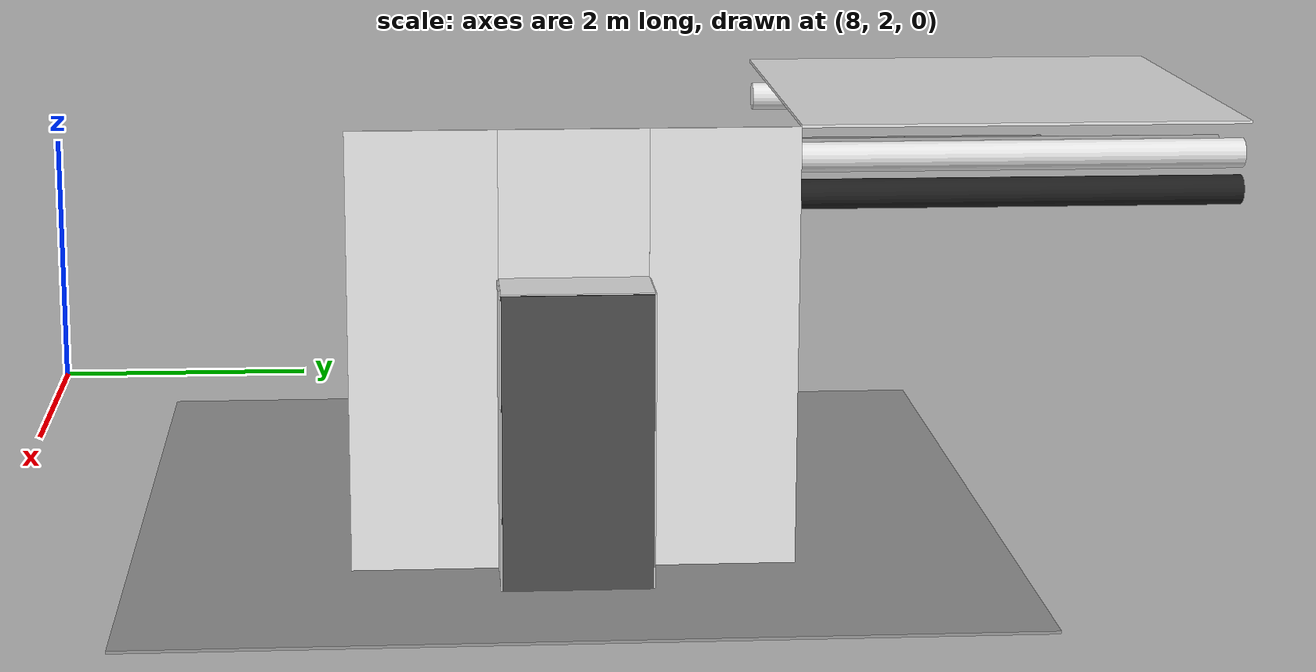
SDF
<sdf version="1.6">
 <world name="default">
  <model name="ceiling_1_4_2_1_3">
   <pose>12.0 7.0 2.55 0.0 0.0 0.0</pose>
   <link name="link_1">
    <visual name="visual">
     <geometry><box><size>0.8 1 0.1</size></box></geometry>
     <material>
      <script><uri>file://media/materials/scripts/gazebo.material</uri><name>Gazebo/Grey</name></script>
     </material>
    </visual>
    <collision name="collision"><geometry><box><size>0.8 1 0.1</size></box></geometry></collision>
   </link>
   <static>1</static>
  </model>
  <model name="grey_pipe_right_1_4_2_0_3">
   <static>1</static>
   <pose>12.0 6.0 2.76 0.0 0.0 0.0</pose>
   <link name="link_0">
    <visual name="visual">
     <pose>0.7 0 0 1.57 0 0</pose>
     <geometry><cylinder><radius>0.02</radius><length>3.0</length></cylinder></geometry>
     <material>
      <script><uri>file://media/materials/scripts/gazebo.material</uri><name>Gazebo/Grey</name></script>
     </material>
    </visual>
    <collision name="collision">
     <pose>0.7 0 0 1.57 0 0</pose>
     <geometry><cylinder><radius>0.02</radius><length>3.0</length></cylinder></geometry>
    </collision>
   </link>
  </model>
  <model name="red_pipe_right_1_4_2_0_3">
   <static>1</static>
   <pose>12.0 6.0 2.76 0.0 0.0 0.0</pose>
   <link name="link_0">
    <visual name="visual">
     <pose>0.85 0 0 1.57 0 0</pose>
     <geometry><cylinder><radius>0.02</radius><length>3.0</length></cylinder></geometry>
     <material>
      <script><uri>file://media/materials/scripts/gazebo.material</uri><name>Gazebo/Red</name></script>
     </material>
    </visual>
    <collision name="collision">
     <pose>0.85 0 0 1.57 0 0</pose>
     <geometry><cylinder><radius>0.02</radius><length>3.0</length></cylinder></geometry>
    </collision>
   </link>
  </model>
  <model name="blue_pipe_right_1_4_2_0_3">
   <static>1</static>
   <pose>12.0 6.0 2.76 0.0 0.0 0.0</pose>
   <link name="link_0">
    <visual name="visual">
     <pose>1 0 0 1.57 0 0</pose>
     <geometry><cylinder><radius>0.02</radius><length>3.0</length></cylinder></geometry>
     <material>
      <script><uri>file://media/materials/scripts/gazebo.material</uri><name>Gazebo/Blue</name></script>
     </material>
    </visual>
    <collision name="collision">
     <pose>1 0 0 1.57 0 0</pose>
     <geometry><cylinder><radius>0.02</radius><length>3.0</length></cylinder></geometry>
    </collision>
   </link>
  </model>
  <model name="wall_bottom_4_2_0_3">
   <static>1</static>
   <pose>12.0 6.0 0.0 0.0 0.0 -1.57</pose>
   <link name="link">
    <collision name="collision"><geometry><box><size>6.0 6.0 0.02</size></box></geometry></collision>
    <visual name="visual">
     <material>
      <script><name>Gazebo/Grey</name><uri>file://media/materials/scripts/gazebo.material</uri></script>
     </material>
     <geometry><box><size>6.0 6.0 0.02</size></box></geometry>
    </visual>
   </link>
  </model>
  <model name="wall_front_front_left_4_2_0_3">
   <static>1</static>
   <pose>13.5 5.0 1.5 0.0 0.0 -1.57</pose>
   <link name="link">
    <collision name="collision"><geometry><box><size>1.0 0.02 3.0</size></box></geometry></collision>
    <visual name="visual">
     <material>
      <script><name>Gazebo/White</name><uri>file://media/materials/scripts/gazebo.material</uri></script>
     </material>
     <geometry><box><size>1.0 0.02 3.0</size></box></geometry>
    </visual>
   </link>
  </model>
  <model name="wall_front_front_right_4_2_0_3">
   <static>1</static>
   <pose>13.5 7.0 1.5 0.0 0.0 -1.57</pose>
   <link name="link">
    <collision name="collision"><geometry><box><size>1.0 0.02 3.0</size></box></geometry></collision>
    <visual name="visual">
     <material>
      <script><name>Gazebo/White</name><uri>file://media/materials/scripts/gazebo.material</uri></script>
     </material>
     <geometry><box><size>1.0 0.02 3.0</size></box></geometry>
    </visual>
   </link>
  </model>
  <model name="wall_front_front_up_4_2_0_3">
   <static>1</static>
   <pose>13.5 6.0 2.5 0.0 0.0 -1.57</pose>
   <link name="link">
    <collision name="collision"><geometry><box><size>1.0 0.02 1.0</size></box></geometry></collision>
    <visual name="visual">
     <material>
      <script><name>Gazebo/White</name><uri>file://media/materials/scripts/gazebo.material</uri></script>
     </material>
     <geometry><box><size>1.0 0.02 1.0</size></box></geometry>
    </visual>
   </link>
  </model>
  <model name="wall_front_inside_back_4_2_0_3">
   <static>1</static>
   <pose>14.0 6.0 1.0 0.0 0.0 -1.57</pose>
   <link name="link">
    <collision name="collision"><geometry><box><size>1 0.02 2</size></box></geometry></collision>
    <visual name="visual">
     <material>
      <script><name>Gazebo/DarkGrey</name><uri>file://media/materials/scripts/gazebo.material</uri></script>
     </material>
     <geometry><box><size>1 0.02 2</size></box></geometry>
    </visual>
   </link>
  </model>
  <model name="wall_front_inside_left_4_2_0_3">
   <static>1</static>
   <pose>13.75 6.5 1.0 0.0 0.0 0.0</pose>
   <link name="link">
    <collision name="collision"><geometry><box><size>0.5 0.02 2</size></box></geometry></collision>
    <visual name="visual">
     <material>
      <script><name>Gazebo/White</name><uri>file://media/materials/scripts/gazebo.material</uri></script>
     </material>
     <geometry><box><size>0.5 0.02 2</size></box></geometry>
    </visual>
   </link>
  </model>
  <model name="wall_front_inside_right_4_2_0_3">
   <static>1</static>
   <pose>13.75 5.5 1.0 0.0 0.0 0.0</pose>
   <link name="link">
    <collision name="collision"><geometry><box><size>0.5 0.02 2</size></box></geometry></collision>
    <visual name="visual">
     <material>
      <script><name>Gazebo/White</name><uri>file://media/materials/scripts/gazebo.material</uri></script>
     </material>
     <geometry><box><size>0.5 0.02 2</size></box></geometry>
    </visual>
   </link>
  </model>
  <model name="wall_front_inside_top_4_2_0_3">
   <static>1</static>
   <pose>13.75 6.0 2.0 1.57 0.0 -1.57</pose>
   <link name="link">
    <collision name="collision"><geometry><box><size>1 0.02 0.5</size></box></geometry></collision>
    <visual name="visual">
     <material>
      <script><name>Gazebo/White</name><uri>file://media/materials/scripts/gazebo.material</uri></script>
     </material>
     <geometry><box><size>1 0.02 0.5</size></box></geometry>
    </visual>
   </link>
  </model>
  <model name="wall_top_4_3_0_1">
   <static>1</static>
   <pose>12.0 9.0 3.0 1.57 0.0 0.0</pose>
   <link name="link">
    <collision name="collision"><geometry><box><size>3.0 0.02 3.0</size></box></geometry></collision>
    <visual name="visual">
     <material>
      <script><name>Gazebo/White</name><uri>file://media/materials/scripts/gazebo.material</uri></script>
     </material>
     <geometry><box><size>3.0 0.02 3.0</size></box></geometry>
    </visual>
   </link>
  </model>
  <model name="ceiling_1_4_3_0_1">
   <pose>12.0 9.0 2.55 0.0 0.0 0.0</pose>
   <link name="link_1">
    <visual name="visual">
     <geometry><box><size>0.8 1 0.1</size></box></geometry>
     <material>
      <script><uri>file://media/materials/scripts/gazebo.material</uri><name>Gazebo/Grey</name></script>
     </material>
    </visual>
    <collision name="collision"><geometry><box><size>0.8 1 0.1</size></box></geometry></collision>
   </link>
   <static>1</static>
  </model>
  <model name="ceiling_1_4_3_1_1">
   <pose>12.0 8.0 2.55 0.0 0.0 0.0</pose>
   <link name="link_1">
    <visual name="visual">
     <geometry><box><size>0.8 1 0.1</size></box></geometry>
     <material>
      <script><uri>file://media/materials/scripts/gazebo.material</uri><name>Gazebo/Grey</name></script>
     </material>
    </visual>
    <collision name="collision"><geometry><box><size>0.8 1 0.1</size></box></geometry></collision>
   </link>
   <static>1</static>
  </model>
  <model name="white_pipe_left_4_3_0_1">
   <static>1</static>
   <pose>12.0 9.0 2.76 0.0 0.0 0.0</pose>
   <link name="link_0">
    <visual name="visual">
     <pose>-1.3 0 0 1.57 0 0</pose>
     <geometry><cylinder><radius>0.1</radius><length>3.0</length></cylinder></geometry>
     <material>
      <script><uri>file://media/materials/scripts/gazebo.material</uri><name>Gazebo/White</name></script>
     </material>
    </visual>
    <collision name="collision">
     <pose>-1.3 0 0 1.57 0 0</pose>
     <geometry><cylinder><radius>0.1</radius><length>3.0</length></cylinder></geometry>
    </collision>
   </link>
  </model>
  <model name="white_pipe_right_4_3_0_1">
   <static>1</static>
   <pose>12.0 9.0 2.76 0.0 0.0 0.0</pose>
   <link name="link_0">
    <visual name="visual">
     <pose>1.3 0 0 1.57 0 0</pose>
     <geometry><cylinder><radius>0.1</radius><length>3.0</length></cylinder></geometry>
     <material>
      <script><uri>file://media/materials/scripts/gazebo.material</uri><name>Gazebo/White</name></script>
     </material>
    </visual>
    <collision name="collision">
     <pose>1.3 0 0 1.57 0 0</pose>
     <geometry><cylinder><radius>0.1</radius><length>3.0</length></cylinder></geometry>
    </collision>
   </link>
  </model>
  <model name="black_pipe_right_4_3_0_1">
   <static>1</static>
   <pose>12.0 9.0 2.76 0.0 0.0 0.0</pose>
   <link name="link_0">
    <visual name="visual">
     <pose>1.3 0 -0.25 1.57 0 0</pose>
     <geometry><cylinder><radius>0.1</radius><length>3.0</length></cylinder></geometry>
     <material>
      <script><uri>file://media/materials/scripts/gazebo.material</uri><name>Gazebo/Black</name></script>
     </material>
    </visual>
    <collision name="collision">
     <pose>1.3 0 -0.25 1.57 0 0</pose>
     <geometry><cylinder><radius>0.1</radius><length>3.0</length></cylinder></geometry>
    </collision>
   </link>
  </model>
  <model name="grey_pipe_right_4_3_0_1">
   <static>1</static>
   <pose>12.0 9.0 2.76 0.0 0.0 0.0</pose>
   <link name="link_0">
    <visual name="visual">
     <pose>0.7 0 0 1.57 0 0</pose>
     <geometry><cylinder><radius>0.02</radius><length>3.0</length></cylinder></geometry>
     <material>
      <script><uri>file://media/materials/scripts/gazebo.material</uri><name>Gazebo/Grey</name></script>
     </material>
    </visual>
    <collision name="collision">
     <pose>0.7 0 0 1.57 0 0</pose>
     <geometry><cylinder><radius>0.02</radius><length>3.0</length></cylinder></geometry>
    </collision>
   </link>
  </model>
  <model name="red_pipe_right_4_3_0_1">
   <static>1</static>
   <pose>12.0 9.0 2.76 0.0 0.0 0.0</pose>
   <link name="link_0">
    <visual name="visual">
     <pose>0.85 0 0 1.57 0 0</pose>
     <geometry><cylinder><radius>0.02</radius><length>3.0</length></cylinder></geometry>
     <material>
      <script><uri>file://media/materials/scripts/gazebo.material</uri><name>Gazebo/Red</name></script>
     </material>
    </visual>
    <collision name="collision">
     <pose>0.85 0 0 1.57 0 0</pose>
     <geometry><cylinder><radius>0.02</radius><length>3.0</length></cylinder></geometry>
    </collision>
   </link>
  </model>
 </world>
</sdf>
